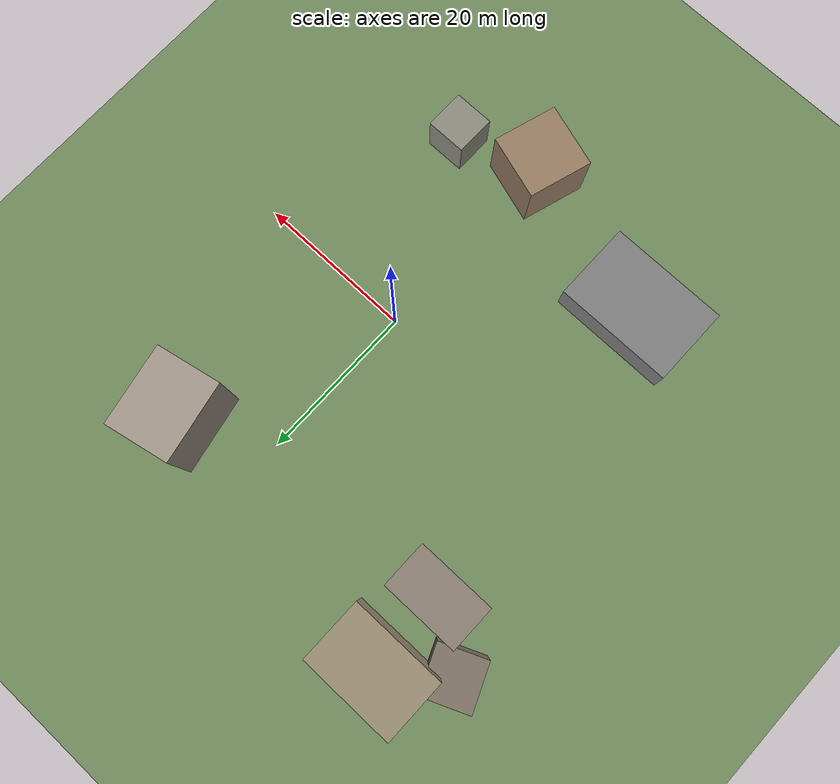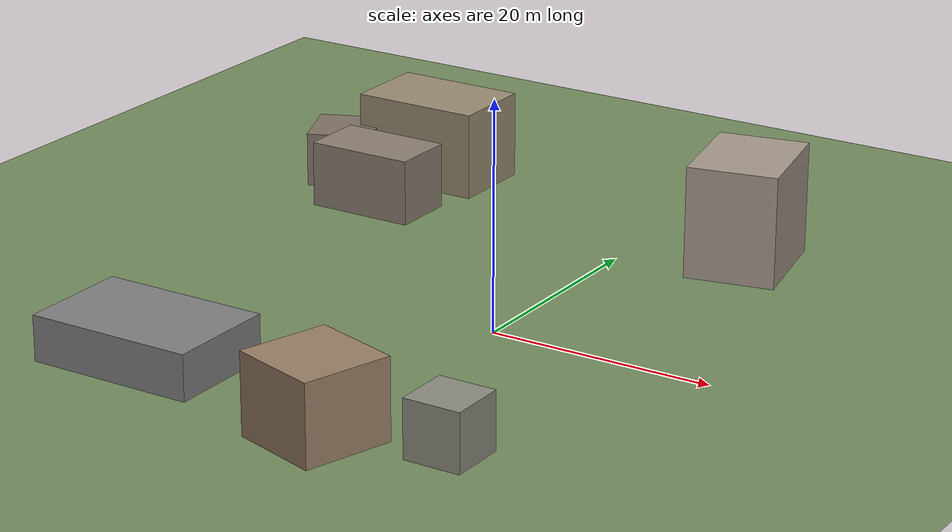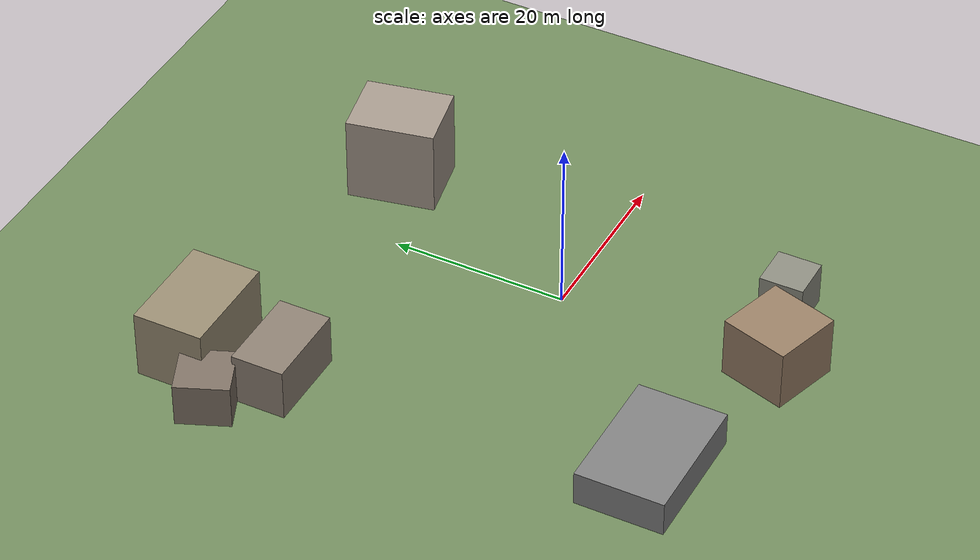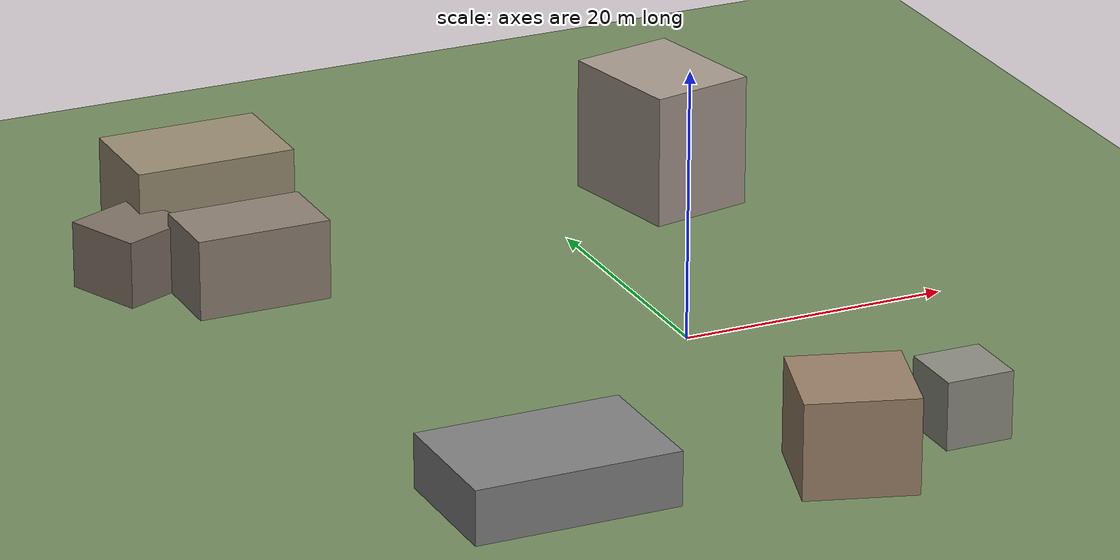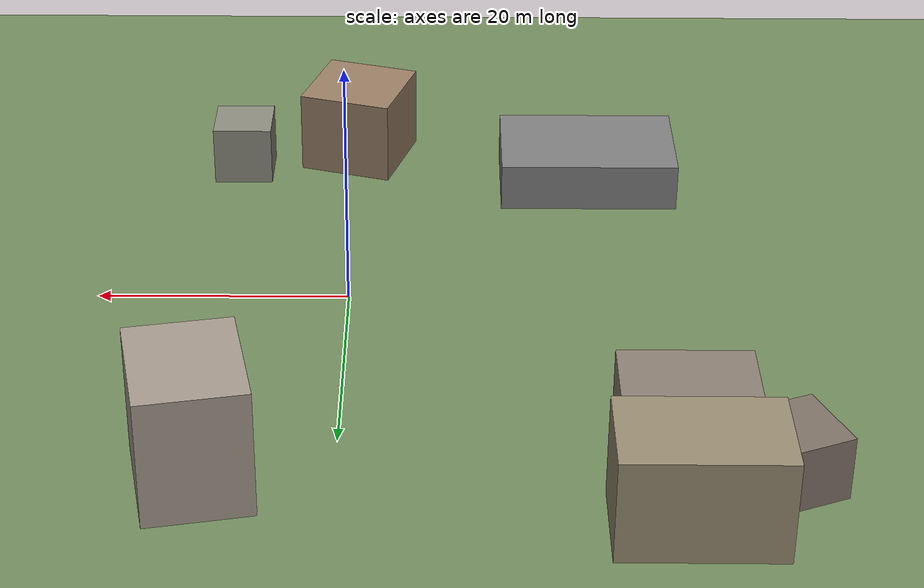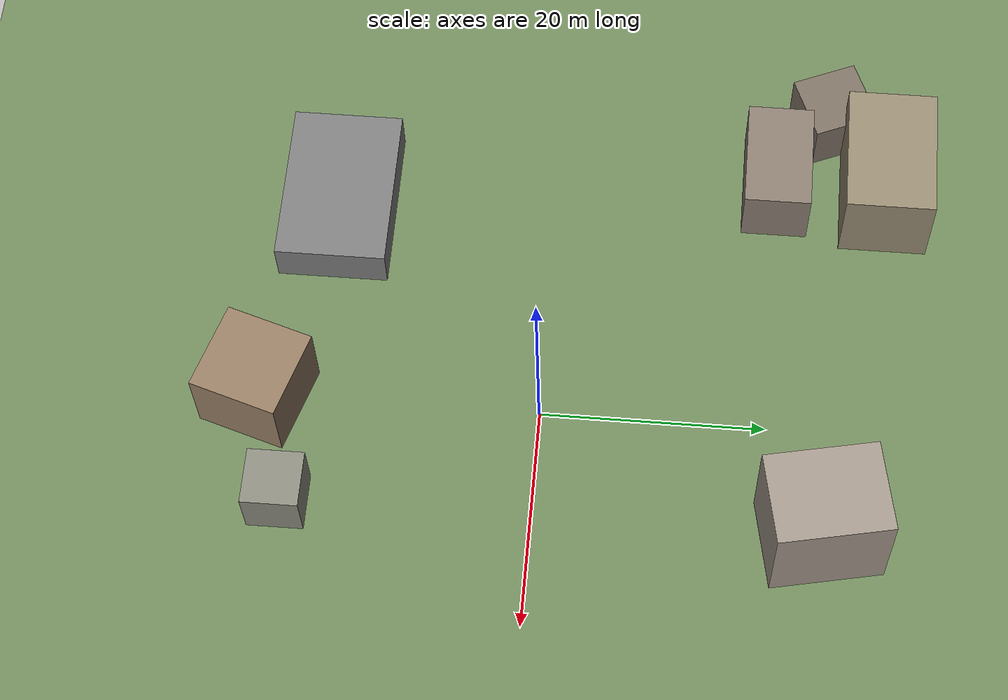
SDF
<sdf version="1.9">
 <world name="search_area">
  <physics type="ode">
   <max_step_size>0.004</max_step_size>
   <real_time_factor>1.0</real_time_factor>
   <real_time_update_rate>250</real_time_update_rate>
  </physics>
  <plugin name="gz::sim::systems::Physics" filename="gz-sim-physics-system"/>
  <plugin name="gz::sim::systems::UserCommands" filename="gz-sim-user-commands-system"/>
  <plugin name="gz::sim::systems::SceneBroadcaster" filename="gz-sim-scene-broadcaster-system"/>
  <plugin name="gz::sim::systems::Contact" filename="gz-sim-contact-system"/>
  <plugin name="gz::sim::systems::Imu" filename="gz-sim-imu-system"/>
  <plugin name="gz::sim::systems::AirPressure" filename="gz-sim-air-pressure-system"/>
  <plugin name="gz::sim::systems::ApplyLinkWrench" filename="gz-sim-apply-link-wrench-system"/>
  <plugin name="gz::sim::systems::NavSat" filename="gz-sim-navsat-system"/>
  <plugin name="gz::sim::systems::Sensors" filename="gz-sim-sensors-system">
   <render_engine>ogre2</render_engine>
  </plugin>
  <gravity>0 0 -9.8</gravity>
  <magnetic_field>6e-06 2.3e-05 -4.2e-05</magnetic_field>
  <atmosphere type="adiabatic"/>
  <spherical_coordinates>
   <surface_model>EARTH_WGS84</surface_model>
   <world_frame_orientation>ENU</world_frame_orientation>
   <latitude_deg>47.397971057728974</latitude_deg>
   <longitude_deg>8.546163739800146</longitude_deg>
   <elevation>0</elevation>
  </spherical_coordinates>
  <scene>
   <grid>false</grid>
   <ambient>0.4 0.4 0.4 1</ambient>
   <background>0.7 0.7 0.7 1</background>
   <shadows>true</shadows>
  </scene>
  <light name="sunUTC" type="directional">
   <pose>0 0 500 0 0 0</pose>
   <intensity>1</intensity>
   <direction>0.001 0.625 -0.78</direction>
   <diffuse>0.904 0.904 0.904 1</diffuse>
   <specular>0.271 0.271 0.271 1</specular>
   <attenuation><range>2000</range><linear>0</linear><constant>1</constant><quadratic>0</quadratic></attenuation>
  </light>
  <model name="ground_plane">
   <static>true</static>
   <link name="link">
    <collision name="collision">
     <geometry><plane><normal>0 0 1</normal><size>120 120</size></plane></geometry>
    </collision>
    <visual name="visual">
     <geometry><plane><normal>0 0 1</normal><size>120 120</size></plane></geometry>
     <material><ambient>0.45 0.55 0.37 1</ambient><diffuse>0.45 0.55 0.37 1</diffuse></material>
    </visual>
   </link>
  </model>
  <model name="building_1">
   <static>true</static>
   <pose>-25 30 4 0 0 0</pose>
   <link name="link">
    <collision name="collision"><geometry><box><size>12 8 8</size></box></geometry></collision>
    <visual name="visual">
     <geometry><box><size>12 8 8</size></box></geometry>
     <material><ambient>0.6 0.55 0.45 1</ambient><diffuse>0.6 0.55 0.45 1</diffuse></material>
    </visual>
   </link>
  </model>
  <model name="building_2">
   <static>true</static>
   <pose>-25 20 3 0 0 0</pose>
   <link name="link">
    <collision name="collision"><geometry><box><size>10 6 6</size></box></geometry></collision>
    <visual name="visual">
     <geometry><box><size>10 6 6</size></box></geometry>
     <material><ambient>0.55 0.5 0.45 1</ambient><diffuse>0.55 0.5 0.45 1</diffuse></material>
    </visual>
   </link>
  </model>
  <model name="building_3">
   <static>true</static>
   <pose>-32 25 2.5 0 0 0.4</pose>
   <link name="link">
    <collision name="collision"><geometry><box><size>6 6 5</size></box></geometry></collision>
    <visual name="visual">
     <geometry><box><size>6 6 5</size></box></geometry>
     <material><ambient>0.5 0.45 0.4 1</ambient><diffuse>0.5 0.45 0.4 1</diffuse></material>
    </visual>
   </link>
  </model>
  <model name="building_4">
   <static>true</static>
   <pose>10 25 5 0 0 0.2</pose>
   <link name="link">
    <collision name="collision"><geometry><box><size>8 10 10</size></box></geometry></collision>
    <visual name="visual">
     <geometry><box><size>8 10 10</size></box></geometry>
     <material><ambient>0.65 0.6 0.55 1</ambient><diffuse>0.65 0.6 0.55 1</diffuse></material>
    </visual>
   </link>
  </model>
  <model name="building_5">
   <static>true</static>
   <pose>-20 -20 2 0 0 0</pose>
   <link name="link">
    <collision name="collision"><geometry><box><size>15 10 4</size></box></geometry></collision>
    <visual name="visual">
     <geometry><box><size>15 10 4</size></box></geometry>
     <material><ambient>0.5 0.5 0.5 1</ambient><diffuse>0.5 0.5 0.5 1</diffuse></material>
    </visual>
   </link>
  </model>
  <model name="building_6">
   <static>true</static>
   <pose>0 -25 3.5 0 0 -0.3</pose>
   <link name="link">
    <collision name="collision"><geometry><box><size>8 8 7</size></box></geometry></collision>
    <visual name="visual">
     <geometry><box><size>8 8 7</size></box></geometry>
     <material><ambient>0.6 0.5 0.4 1</ambient><diffuse>0.6 0.5 0.4 1</diffuse></material>
    </visual>
   </link>
  </model>
  <model name="building_7">
   <static>true</static>
   <pose>10 -22 2.5 0 0 0</pose>
   <link name="link">
    <collision name="collision"><geometry><box><size>5 5 5</size></box></geometry></collision>
    <visual name="visual">
     <geometry><box><size>5 5 5</size></box></geometry>
     <material><ambient>0.55 0.55 0.5 1</ambient><diffuse>0.55 0.55 0.5 1</diffuse></material>
    </visual>
   </link>
  </model>
 </world>
</sdf>
